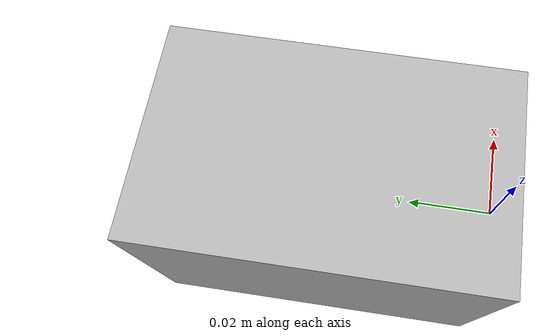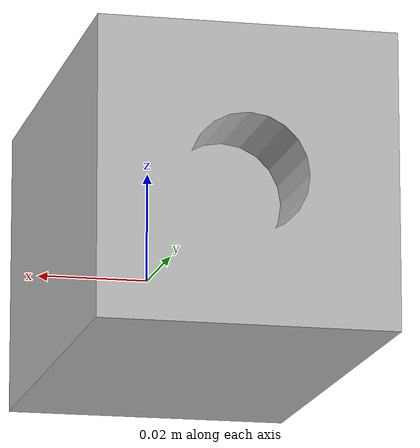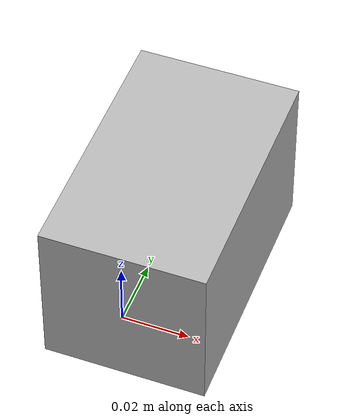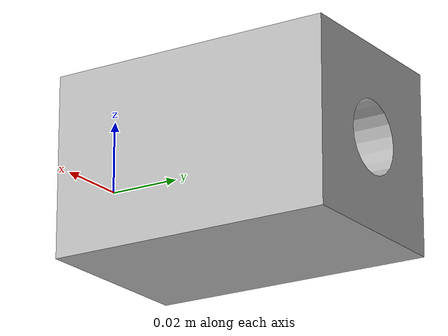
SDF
<?xml version="1.0" encoding="UTF-8"?>
<sdf version="1.4">
   <model name="hole_model">
      <static>false</static>
      <link name="hole_link">
         <pose>0 0 0 0 0 0</pose>
         <inertial>
            <mass>30</mass>
            <pose>0 0 0 0 0 0</pose>
            <inertia>
               <ixx>1</ixx>
               <ixy>0</ixy>
               <ixz>0</ixz>
               <iyy>1</iyy>
               <iyz>0</iyz>
               <izz>1</izz>
            </inertia>
         </inertial>
         <collision name="hole_collision">
            <pose>0 0 0 0 0 0</pose>
            <geometry>
               <mesh>
                  <uri>model://mobile_dual_arm/scene/meshes/hole_v6.SLDPRT.stl</uri>
               </mesh>
            </geometry>
            <surface>
               <bounce>
                  <restitution_coefficient>0</restitution_coefficient>
               </bounce>
               <friction>
                  <ode>
                     <mu>0.01</mu>
                     <mu2>0.01</mu2>
                  </ode>
               </friction>
            </surface>
         </collision>
         <visual name="hole_visual">
            <pose>0 0 0 0 0 0</pose>
            <geometry>
               <mesh>
                  <uri>model://mobile_dual_arm/scene/meshes/hole_v6.SLDPRT.stl</uri>
               </mesh>
            </geometry>
         </visual>
         <velocity_decay>
            <linear>0</linear>
            <angular>0</angular>
         </velocity_decay>
         <self_collide>0</self_collide>
         <gravity>1</gravity>
      </link>
   </model>
</sdf>
